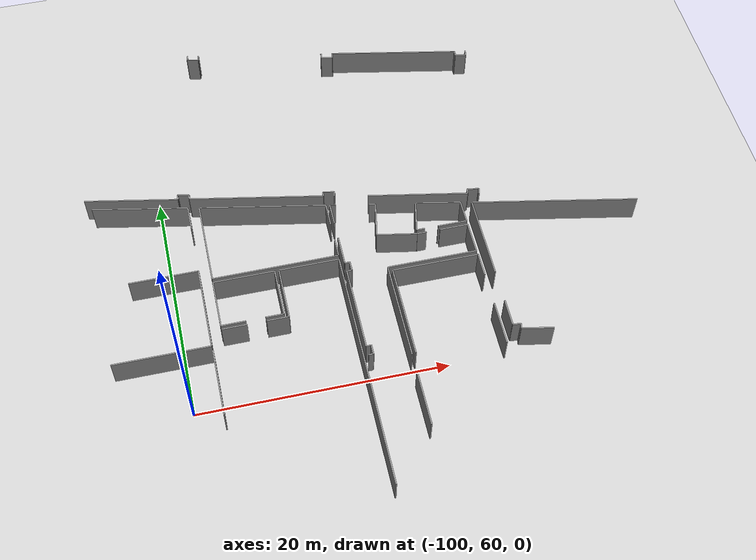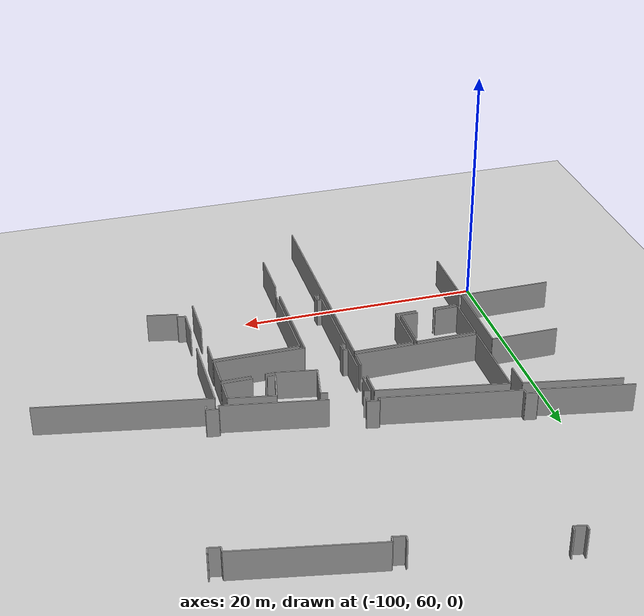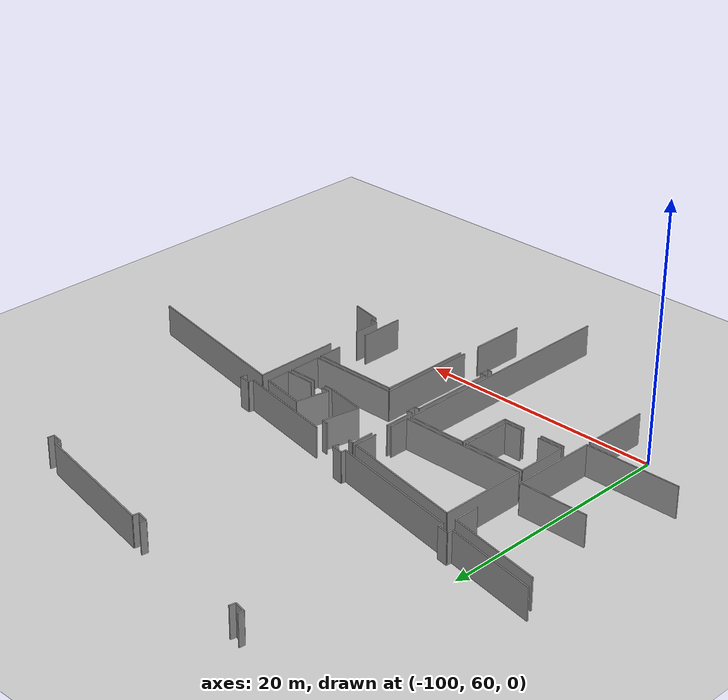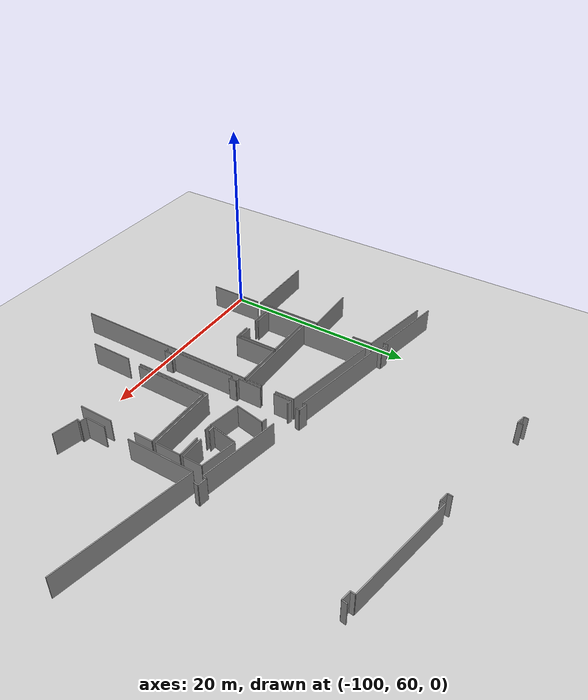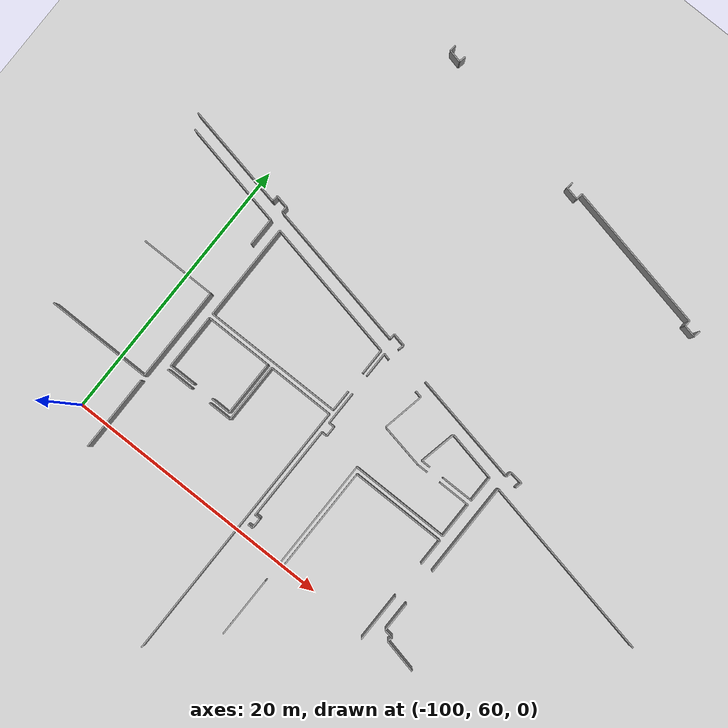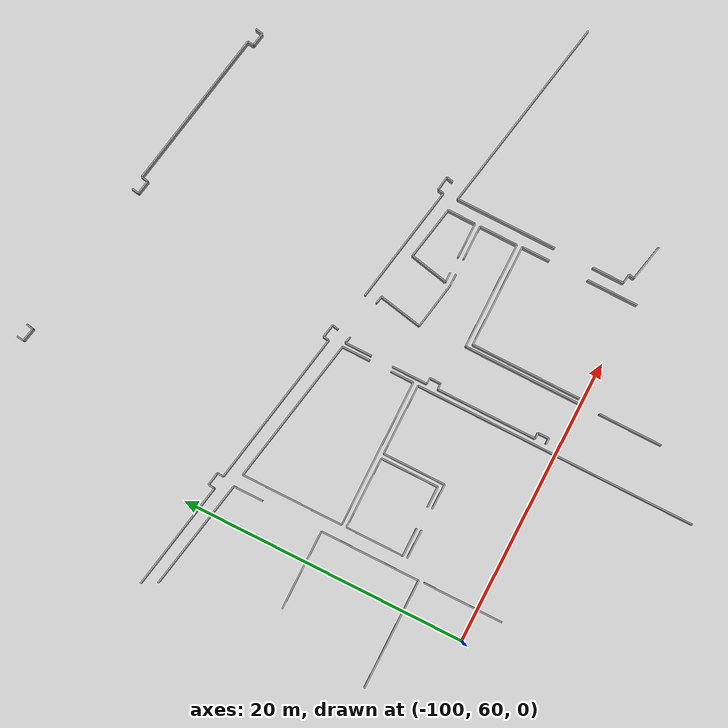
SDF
<sdf version="1.6">
 <world name="default">
  <model name="ground_plane">
   <static>1</static>
   <link name="link">
    <collision name="collision">
     <geometry><plane><normal>0 0 1</normal><size>100 100</size></plane></geometry>
     <surface><friction><ode><mu>100</mu><mu2>50</mu2></ode></friction></surface>
    </collision>
    <visual name="visual">
     <cast_shadows>0</cast_shadows>
     <geometry><plane><normal>0 0 1</normal><size>100 100</size></plane></geometry>
     <material>
      <script><uri>file://media/materials/scripts/gazebo.material</uri><name>Gazebo/Grey</name></script>
     </material>
    </visual>
   </link>
  </model>
  <model name="0510045926_A-40">
   <static>1</static>
   <link name="Wall_365">
    <collision name="Wall_365_Collision">
     <geometry><box><size>0.461885940468 0.1 2.5</size></box></geometry>
     <pose>0.230942970234 0 1.25 0 0 0</pose>
    </collision>
    <visual name="Wall_365_Visual">
     <pose>0.230942970234 0 1.25 0 0 0</pose>
     <geometry><box><size>0.461885940468 0.1 2.5</size></box></geometry>
     <material>
      <script><uri>file://media/materials/scripts/gazebo.material</uri><name>Gazebo/Grey</name></script>
      <ambient>1 1 1 1</ambient>
     </material>
    </visual>
    <pose>38.5242316747 -6.83302132844 0 0 0 -1.67374598682</pose>
   </link>
   <link name="Wall_366">
    <collision name="Wall_366_Collision">
     <geometry><box><size>0.952919581599 0.1 2.5</size></box></geometry>
     <pose>0.476459790799 0 1.25 0 0 0</pose>
    </collision>
    <visual name="Wall_366_Visual">
     <pose>0.476459790799 0 1.25 0 0 0</pose>
     <geometry><box><size>0.952919581599 0.1 2.5</size></box></geometry>
     <material>
      <script><uri>file://media/materials/scripts/gazebo.material</uri><name>Gazebo/Grey</name></script>
      <ambient>1 1 1 1</ambient>
     </material>
    </visual>
    <pose>38.4767646256 -7.29246175032 0 0 0 -0.220749206373</pose>
   </link>
   <link name="Wall_367">
    <collision name="Wall_367_Collision">
     <geometry><box><size>0.493934780057 0.1 2.5</size></box></geometry>
     <pose>0.246967390029 0 1.25 0 0 0</pose>
    </collision>
    <visual name="Wall_367_Visual">
     <pose>0.246967390029 0 1.25 0 0 0</pose>
     <geometry><box><size>0.493934780057 0.1 2.5</size></box></geometry>
     <material>
      <script><uri>file://media/materials/scripts/gazebo.material</uri><name>Gazebo/Grey</name></script>
      <ambient>1 1 1 1</ambient>
     </material>
    </visual>
    <pose>39.4065603523 -7.50111369881 0 0 0 1.36795836956</pose>
   </link>
   <link name="Wall_368">
    <collision name="Wall_368_Collision">
     <geometry><box><size>0.496517711066 0.1 2.5</size></box></geometry>
     <pose>0.248258855533 0 1.25 0 0 0</pose>
    </collision>
    <visual name="Wall_368_Visual">
     <pose>0.248258855533 0 1.25 0 0 0</pose>
     <geometry><box><size>0.496517711066 0.1 2.5</size></box></geometry>
     <material>
      <script><uri>file://media/materials/scripts/gazebo.material</uri><name>Gazebo/Grey</name></script>
      <ambient>1 1 1 1</ambient>
     </material>
    </visual>
    <pose>50.3158589442 -9.1066168305 0 0 0 -1.72115243782</pose>
   </link>
   <link name="Wall_369">
    <collision name="Wall_369_Collision">
     <geometry><box><size>0.964470180362 0.1 2.5</size></box></geometry>
     <pose>0.482235090181 0 1.25 0 0 0</pose>
    </collision>
    <visual name="Wall_369_Visual">
     <pose>0.482235090181 0 1.25 0 0 0</pose>
     <geometry><box><size>0.964470180362 0.1 2.5</size></box></geometry>
     <material>
      <script><uri>file://media/materials/scripts/gazebo.material</uri><name>Gazebo/Grey</name></script>
      <ambient>1 1 1 1</ambient>
     </material>
    </visual>
    <pose>50.2414854394 -9.59753272878 0 0 0 -0.2024538423</pose>
   </link>
   <link name="Wall_370">
    <collision name="Wall_370_Collision">
     <geometry><box><size>0.48304142692 0.1 2.5</size></box></geometry>
     <pose>0.24152071346 0 1.25 0 0 0</pose>
    </collision>
    <visual name="Wall_370_Visual">
     <pose>0.24152071346 0 1.25 0 0 0</pose>
     <geometry><box><size>0.48304142692 0.1 2.5</size></box></geometry>
     <material>
      <script><uri>file://media/materials/scripts/gazebo.material</uri><name>Gazebo/Grey</name></script>
      <ambient>1 1 1 1</ambient>
     </material>
    </visual>
    <pose>51.1862574009 -9.79146227702 0 0 0 1.38154239886</pose>
   </link>
   <link name="Wall_371">
    <collision name="Wall_371_Collision">
     <geometry><box><size>11.0305666657 0.1 2.5</size></box></geometry>
     <pose>5.51528333285 0 1.25 0 0 0</pose>
    </collision>
    <visual name="Wall_371_Visual">
     <pose>5.51528333285 0 1.25 0 0 0</pose>
     <geometry><box><size>11.0305666657 0.1 2.5</size></box></geometry>
     <material>
      <script><uri>file://media/materials/scripts/gazebo.material</uri><name>Gazebo/Grey</name></script>
      <ambient>1 1 1 1</ambient>
     </material>
    </visual>
    <pose>51.2771301473 -9.3170456204 0 0 0 -0.194899863685</pose>
   </link>
   <link name="Wall_372">
    <collision name="Wall_372_Collision">
     <geometry><box><size>0.42761581827 0.1 2.5</size></box></geometry>
     <pose>0.213807909135 0 1.25 0 0 0</pose>
    </collision>
    <visual name="Wall_372_Visual">
     <pose>0.213807909135 0 1.25 0 0 0</pose>
     <geometry><box><size>0.42761581827 0.1 2.5</size></box></geometry>
     <material>
      <script><uri>file://media/materials/scripts/gazebo.material</uri><name>Gazebo/Grey</name></script>
      <ambient>1 1 1 1</ambient>
     </material>
    </visual>
    <pose>62.098855841 -11.4533166649 0 0 0 -1.62662410434</pose>
   </link>
   <link name="Wall_373">
    <collision name="Wall_373_Collision">
     <geometry><box><size>0.91472697573 0.1 2.5</size></box></geometry>
     <pose>0.457363487865 0 1.25 0 0 0</pose>
    </collision>
    <visual name="Wall_373_Visual">
     <pose>0.457363487865 0 1.25 0 0 0</pose>
     <geometry><box><size>0.91472697573 0.1 2.5</size></box></geometry>
     <material>
      <script><uri>file://media/materials/scripts/gazebo.material</uri><name>Gazebo/Grey</name></script>
      <ambient>1 1 1 1</ambient>
     </material>
    </visual>
    <pose>62.0749953992 -11.8802662724 0 0 0 -0.198320729654</pose>
   </link>
   <link name="Wall_374">
    <collision name="Wall_374_Collision">
     <geometry><box><size>0.51002777244 0.1 2.5</size></box></geometry>
     <pose>0.25501388622 0 1.25 0 0 0</pose>
    </collision>
    <visual name="Wall_374_Visual">
     <pose>0.25501388622 0 1.25 0 0 0</pose>
     <geometry><box><size>0.51002777244 0.1 2.5</size></box></geometry>
     <material>
      <script><uri>file://media/materials/scripts/gazebo.material</uri><name>Gazebo/Grey</name></script>
      <ambient>1 1 1 1</ambient>
     </material>
    </visual>
    <pose>62.9717926426 -12.0604887583 0 0 0 1.40278396878</pose>
   </link>
   <link name="Wall_483">
    <collision name="Wall_483_Collision">
     <geometry><box><size>0.485042703617 0.1 2.5</size></box></geometry>
     <pose>0.242521351808 0 1.25 0 0 0</pose>
    </collision>
    <visual name="Wall_483_Visual">
     <pose>0.242521351808 0 1.25 0 0 0</pose>
     <geometry><box><size>0.485042703617 0.1 2.5</size></box></geometry>
     <material>
      <script><uri>file://media/materials/scripts/gazebo.material</uri><name>Gazebo/Grey</name></script>
      <ambient>1 1 1 1</ambient>
     </material>
    </visual>
    <pose>59.9993907972 -27.263651536 0 0 0 1.34650786807</pose>
   </link>
   <link name="Wall_484">
    <collision name="Wall_484_Collision">
     <geometry><box><size>0.963354885149 0.1 2.5</size></box></geometry>
     <pose>0.481677442574 0 1.25 0 0 0</pose>
    </collision>
    <visual name="Wall_484_Visual">
     <pose>0.481677442574 0 1.25 0 0 0</pose>
     <geometry><box><size>0.963354885149 0.1 2.5</size></box></geometry>
     <material>
      <script><uri>file://media/materials/scripts/gazebo.material</uri><name>Gazebo/Grey</name></script>
      <ambient>1 1 1 1</ambient>
     </material>
    </visual>
    <pose>60.1072704543 -26.7907578863 0 0 0 3.00334739375</pose>
   </link>
   <link name="Wall_485">
    <collision name="Wall_485_Collision">
     <geometry><box><size>0.413184305725 0.1 2.5</size></box></geometry>
     <pose>0.206592152863 0 1.25 0 0 0</pose>
    </collision>
    <visual name="Wall_485_Visual">
     <pose>0.206592152863 0 1.25 0 0 0</pose>
     <geometry><box><size>0.413184305725 0.1 2.5</size></box></geometry>
     <material>
      <script><uri>file://media/materials/scripts/gazebo.material</uri><name>Gazebo/Grey</name></script>
      <ambient>1 1 1 1</ambient>
     </material>
    </visual>
    <pose>59.1531066168 -26.6580024495 0 0 0 -1.75240816315</pose>
   </link>
   <link name="Wall_486">
    <collision name="Wall_486_Collision">
     <geometry><box><size>8.26304201056 0.1 2.5</size></box></geometry>
     <pose>4.13152100528 0 1.25 0 0 0</pose>
    </collision>
    <visual name="Wall_486_Visual">
     <pose>4.13152100528 0 1.25 0 0 0</pose>
     <geometry><box><size>8.26304201056 0.1 2.5</size></box></geometry>
     <material>
      <script><uri>file://media/materials/scripts/gazebo.material</uri><name>Gazebo/Grey</name></script>
      <ambient>1 1 1 1</ambient>
     </material>
    </visual>
    <pose>59.0784792776 -27.0643914635 0 0 0 2.955029431</pose>
   </link>
   <link name="Wall_487">
    <collision name="Wall_487_Collision">
     <geometry><box><size>0.443338118765 0.1 2.5</size></box></geometry>
     <pose>0.221669059383 0 1.25 0 0 0</pose>
    </collision>
    <visual name="Wall_487_Visual">
     <pose>0.221669059383 0 1.25 0 0 0</pose>
     <geometry><box><size>0.443338118765 0.1 2.5</size></box></geometry>
     <material>
      <script><uri>file://media/materials/scripts/gazebo.material</uri><name>Gazebo/Grey</name></script>
      <ambient>1 1 1 1</ambient>
     </material>
    </visual>
    <pose>48.2255319419 -24.9773643096 0 0 0 1.33442736621</pose>
   </link>
   <link name="Wall_488">
    <collision name="Wall_488_Collision">
     <geometry><box><size>0.963166256967 0.1 2.5</size></box></geometry>
     <pose>0.481583128483 0 1.25 0 0 0</pose>
    </collision>
    <visual name="Wall_488_Visual">
     <pose>0.481583128483 0 1.25 0 0 0</pose>
     <geometry><box><size>0.963166256967 0.1 2.5</size></box></geometry>
     <material>
      <script><uri>file://media/materials/scripts/gazebo.material</uri><name>Gazebo/Grey</name></script>
      <ambient>1 1 1 1</ambient>
     </material>
    </visual>
    <pose>48.3293502472 -24.5463533503 0 0 0 2.9418195915</pose>
   </link>
   <link name="Wall_489">
    <collision name="Wall_489_Collision">
     <geometry><box><size>0.40564156813 0.1 2.5</size></box></geometry>
     <pose>0.202820784065 0 1.25 0 0 0</pose>
    </collision>
    <visual name="Wall_489_Visual">
     <pose>0.202820784065 0 1.25 0 0 0</pose>
     <geometry><box><size>0.40564156813 0.1 2.5</size></box></geometry>
     <material>
      <script><uri>file://media/materials/scripts/gazebo.material</uri><name>Gazebo/Grey</name></script>
      <ambient>1 1 1 1</ambient>
     </material>
    </visual>
    <pose>47.3853397892 -24.3552159814 0 0 0 -1.66479878837</pose>
   </link>
   <link name="Wall_490">
    <collision name="Wall_490_Collision">
     <geometry><box><size>11.0612382931 0.1 2.5</size></box></geometry>
     <pose>5.53061914656 0 1.25 0 0 0</pose>
    </collision>
    <visual name="Wall_490_Visual">
     <pose>5.53061914656 0 1.25 0 0 0</pose>
     <geometry><box><size>11.0612382931 0.1 2.5</size></box></geometry>
     <material>
      <script><uri>file://media/materials/scripts/gazebo.material</uri><name>Gazebo/Grey</name></script>
      <ambient>1 1 1 1</ambient>
     </material>
    </visual>
    <pose>47.3472646161 -24.7590666506 0 0 0 2.95203253429</pose>
   </link>
   <link name="Wall_491">
    <collision name="Wall_491_Collision">
     <geometry><box><size>0.432721098888 0.1 2.5</size></box></geometry>
     <pose>0.216360549444 0 1.25 0 0 0</pose>
    </collision>
    <visual name="Wall_491_Visual">
     <pose>0.216360549444 0 1.25 0 0 0</pose>
     <geometry><box><size>0.432721098888 0.1 2.5</size></box></geometry>
     <material>
      <script><uri>file://media/materials/scripts/gazebo.material</uri><name>Gazebo/Grey</name></script>
      <ambient>1 1 1 1</ambient>
     </material>
    </visual>
    <pose>36.4841639009 -22.674831676 0 0 0 1.49622895798</pose>
   </link>
   <link name="Wall_492">
    <collision name="Wall_492_Collision">
     <geometry><box><size>0.937479080372 0.1 2.5</size></box></geometry>
     <pose>0.468739540186 0 1.25 0 0 0</pose>
    </collision>
    <visual name="Wall_492_Visual">
     <pose>0.468739540186 0 1.25 0 0 0</pose>
     <geometry><box><size>0.937479080372 0.1 2.5</size></box></geometry>
     <material>
      <script><uri>file://media/materials/scripts/gazebo.material</uri><name>Gazebo/Grey</name></script>
      <ambient>1 1 1 1</ambient>
     </material>
    </visual>
    <pose>36.5164008808 -22.2433130477 0 0 0 2.95476438133</pose>
   </link>
   <link name="Wall_493">
    <collision name="Wall_493_Collision">
     <geometry><box><size>0.448874120626 0.1 2.5</size></box></geometry>
     <pose>0.224437060313 0 1.25 0 0 0</pose>
    </collision>
    <visual name="Wall_493_Visual">
     <pose>0.224437060313 0 1.25 0 0 0</pose>
     <geometry><box><size>0.448874120626 0.1 2.5</size></box></geometry>
     <material>
      <script><uri>file://media/materials/scripts/gazebo.material</uri><name>Gazebo/Grey</name></script>
      <ambient>1 1 1 1</ambient>
     </material>
    </visual>
    <pose>35.5952355267 -22.0691825895 0 0 0 -1.65572209704</pose>
   </link>
   <link name="Wall_494">
    <collision name="Wall_494_Collision">
     <geometry><box><size>7.70296379077 0.1 2.5</size></box></geometry>
     <pose>3.85148189539 0 1.25 0 0 0</pose>
    </collision>
    <visual name="Wall_494_Visual">
     <pose>3.85148189539 0 1.25 0 0 0</pose>
     <geometry><box><size>7.70296379077 0.1 2.5</size></box></geometry>
     <material>
      <script><uri>file://media/materials/scripts/gazebo.material</uri><name>Gazebo/Grey</name></script>
      <ambient>1 1 1 1</ambient>
     </material>
    </visual>
    <pose>35.5571603536 -22.516438956 0 0 0 2.95032366023</pose>
   </link>
   <link name="Wall_564">
    <collision name="Wall_564_Collision">
     <geometry><box><size>2.19593535266 0.1 2.5</size></box></geometry>
     <pose>1.09796767633 0 1.25 0 0 0</pose>
    </collision>
    <visual name="Wall_564_Visual">
     <pose>1.09796767633 0 1.25 0 0 0</pose>
     <geometry><box><size>2.19593535266 0.1 2.5</size></box></geometry>
     <material>
      <script><uri>file://media/materials/scripts/gazebo.material</uri><name>Gazebo/Grey</name></script>
      <ambient>1 1 1 1</ambient>
     </material>
    </visual>
    <pose>59.1531066168 -39.9723828078 0 0 0 1.56732853351</pose>
   </link>
   <link name="Wall_565">
    <collision name="Wall_565_Collision">
     <geometry><box><size>7.0027858335 0.1 2.5</size></box></geometry>
     <pose>3.50139291675 0 1.25 0 0 0</pose>
    </collision>
    <visual name="Wall_565_Visual">
     <pose>3.50139291675 0 1.25 0 0 0</pose>
     <geometry><box><size>7.0027858335 0.1 2.5</size></box></geometry>
     <material>
      <script><uri>file://media/materials/scripts/gazebo.material</uri><name>Gazebo/Grey</name></script>
      <ambient>1 1 1 1</ambient>
     </material>
    </visual>
    <pose>59.1657983412 -35.0444400729 0 0 0 1.57079632679</pose>
   </link>
   <link name="Wall_566">
    <collision name="Wall_566_Collision">
     <geometry><box><size>13.6813769998 0.1 2.5</size></box></geometry>
     <pose>6.84068849989 0 1.25 0 0 0</pose>
    </collision>
    <visual name="Wall_566_Visual">
     <pose>6.84068849989 0 1.25 0 0 0</pose>
     <geometry><box><size>13.6813769998 0.1 2.5</size></box></geometry>
     <material>
      <script><uri>file://media/materials/scripts/gazebo.material</uri><name>Gazebo/Grey</name></script>
      <ambient>1 1 1 1</ambient>
     </material>
    </visual>
    <pose>59.1657983412 -28.0416542394 0 0 0 -0.191941273571</pose>
   </link>
   <link name="Wall_575">
    <collision name="Wall_575_Collision">
     <geometry><box><size>2.54412709612 0.1 2.5</size></box></geometry>
     <pose>1.27206354806 0 1.25 0 0 0</pose>
    </collision>
    <visual name="Wall_575_Visual">
     <pose>1.27206354806 0 1.25 0 0 0</pose>
     <geometry><box><size>2.54412709612 0.1 2.5</size></box></geometry>
     <material>
      <script><uri>file://media/materials/scripts/gazebo.material</uri><name>Gazebo/Grey</name></script>
      <ambient>1 1 1 1</ambient>
     </material>
    </visual>
    <pose>62.2067354981 -40.9633526459 0 0 0 2.93275012491</pose>
   </link>
   <link name="Wall_576">
    <collision name="Wall_576_Collision">
     <geometry><box><size>0.375192445591 0.1 2.5</size></box></geometry>
     <pose>0.187596222795 0 1.25 0 0 0</pose>
    </collision>
    <visual name="Wall_576_Visual">
     <pose>0.187596222795 0 1.25 0 0 0</pose>
     <geometry><box><size>0.375192445591 0.1 2.5</size></box></geometry>
     <material>
      <script><uri>file://media/materials/scripts/gazebo.material</uri><name>Gazebo/Grey</name></script>
      <ambient>1 1 1 1</ambient>
     </material>
    </visual>
    <pose>59.7178883509 -40.4358845815 0 0 0 1.31498776218</pose>
   </link>
   <link name="Wall_577">
    <collision name="Wall_577_Collision">
     <geometry><box><size>0.667329708287 0.1 2.5</size></box></geometry>
     <pose>0.333664854143 0 1.25 0 0 0</pose>
    </collision>
    <visual name="Wall_577_Visual">
     <pose>0.333664854143 0 1.25 0 0 0</pose>
     <geometry><box><size>0.667329708287 0.1 2.5</size></box></geometry>
     <material>
      <script><uri>file://media/materials/scripts/gazebo.material</uri><name>Gazebo/Grey</name></script>
      <ambient>1 1 1 1</ambient>
     </material>
    </visual>
    <pose>59.8128224491 -40.0729012647 0 0 0 2.9903892885</pose>
   </link>
   <link name="Wall_614">
    <collision name="Wall_614_Collision">
     <geometry><box><size>2.09083467125 0.1 2.5</size></box></geometry>
     <pose>1.04541733563 0 1.25 0 0 0</pose>
    </collision>
    <visual name="Wall_614_Visual">
     <pose>1.04541733563 0 1.25 0 0 0</pose>
     <geometry><box><size>2.09083467125 0.1 2.5</size></box></geometry>
     <material>
      <script><uri>file://media/materials/scripts/gazebo.material</uri><name>Gazebo/Grey</name></script>
      <ambient>1 1 1 1</ambient>
     </material>
    </visual>
    <pose>36.2361676069 -25.6530717146 0 0 0 1.57079632679</pose>
   </link>
   <link name="Wall_615">
    <collision name="Wall_615_Collision">
     <geometry><box><size>7.85780508552 0.1 2.5</size></box></geometry>
     <pose>3.92890254276 0 1.25 0 0 0</pose>
    </collision>
    <visual name="Wall_615_Visual">
     <pose>3.92890254276 0 1.25 0 0 0</pose>
     <geometry><box><size>7.85780508552 0.1 2.5</size></box></geometry>
     <material>
      <script><uri>file://media/materials/scripts/gazebo.material</uri><name>Gazebo/Grey</name></script>
      <ambient>1 1 1 1</ambient>
     </material>
    </visual>
    <pose>36.2361676069 -23.5622370433 0 0 0 2.94630672842</pose>
   </link>
   <link name="Wall_616">
    <collision name="Wall_616_Collision">
     <geometry><box><size>5.56532113236 0.1 2.5</size></box></geometry>
     <pose>2.78266056618 0 1.25 0 0 0</pose>
    </collision>
    <visual name="Wall_616_Visual">
     <pose>2.78266056618 0 1.25 0 0 0</pose>
     <geometry><box><size>5.56532113236 0.1 2.5</size></box></geometry>
     <material>
      <script><uri>file://media/materials/scripts/gazebo.material</uri><name>Gazebo/Grey</name></script>
      <ambient>1 1 1 1</ambient>
     </material>
    </visual>
    <pose>30.6279484462 -29.8796697613 0 0 0 0.0</pose>
   </link>
   <link name="Wall_617">
    <collision name="Wall_617_Collision">
     <geometry><box><size>6.99187095055 0.1 2.5</size></box></geometry>
     <pose>3.49593547527 0 1.25 0 0 0</pose>
    </collision>
    <visual name="Wall_617_Visual">
     <pose>3.49593547527 0 1.25 0 0 0</pose>
     <geometry><box><size>6.99187095055 0.1 2.5</size></box></geometry>
     <material>
      <script><uri>file://media/materials/scripts/gazebo.material</uri><name>Gazebo/Grey</name></script>
      <ambient>1 1 1 1</ambient>
     </material>
    </visual>
    <pose>36.1932695786 -29.8796697613 0 0 0 -1.57079632679</pose>
   </link>
   <link name="Wall_618">
    <collision name="Wall_618_Collision">
     <geometry><box><size>7.70920721144 0.1 2.5</size></box></geometry>
     <pose>3.85460360572 0 1.25 0 0 0</pose>
    </collision>
    <visual name="Wall_618_Visual">
     <pose>3.85460360572 0 1.25 0 0 0</pose>
     <geometry><box><size>7.70920721144 0.1 2.5</size></box></geometry>
     <material>
      <script><uri>file://media/materials/scripts/gazebo.material</uri><name>Gazebo/Grey</name></script>
      <ambient>1 1 1 1</ambient>
     </material>
    </visual>
    <pose>36.1932695786 -36.8715407119 0 0 0 3.14159265359</pose>
   </link>
   <link name="Wall_678">
    <collision name="Wall_678_Collision">
     <geometry><box><size>5.60111179505 0.1 2.5</size></box></geometry>
     <pose>2.80055589753 0 1.25 0 0 0</pose>
    </collision>
    <visual name="Wall_678_Visual">
     <pose>2.80055589753 0 1.25 0 0 0</pose>
     <geometry><box><size>5.60111179505 0.1 2.5</size></box></geometry>
     <material>
      <script><uri>file://media/materials/scripts/gazebo.material</uri><name>Gazebo/Grey</name></script>
      <ambient>1 1 1 1</ambient>
     </material>
    </visual>
    <pose>36.2260142274 -37.2342701941 0 0 0 -1.57079632679</pose>
   </link>
   <link name="Wall_691">
    <collision name="Wall_691_Collision">
     <geometry><box><size>2.02534537355 0.1 2.5</size></box></geometry>
     <pose>1.01267268677 0 1.25 0 0 0</pose>
    </collision>
    <visual name="Wall_691_Visual">
     <pose>1.01267268677 0 1.25 0 0 0</pose>
     <geometry><box><size>2.02534537355 0.1 2.5</size></box></geometry>
     <material>
      <script><uri>file://media/materials/scripts/gazebo.material</uri><name>Gazebo/Grey</name></script>
      <ambient>1 1 1 1</ambient>
     </material>
    </visual>
    <pose>37.1433720642 -35.5714004683 0 0 0 0.0</pose>
   </link>
   <link name="Wall_692">
    <collision name="Wall_692_Collision">
     <geometry><box><size>1.75754998953 0.1 2.5</size></box></geometry>
     <pose>0.878774994765 0 1.25 0 0 0</pose>
    </collision>
    <visual name="Wall_692_Visual">
     <pose>0.878774994765 0 1.25 0 0 0</pose>
     <geometry><box><size>1.75754998953 0.1 2.5</size></box></geometry>
     <material>
      <script><uri>file://media/materials/scripts/gazebo.material</uri><name>Gazebo/Grey</name></script>
      <ambient>1 1 1 1</ambient>
     </material>
    </visual>
    <pose>40.6871553404 -35.5714004683 0 0 0 0.0</pose>
   </link>
   <link name="Wall_693">
    <collision name="Wall_693_Collision">
     <geometry><box><size>4.38575227023 0.1 2.5</size></box></geometry>
     <pose>2.19287613512 0 1.25 0 0 0</pose>
    </collision>
    <visual name="Wall_693_Visual">
     <pose>2.19287613512 0 1.25 0 0 0</pose>
     <geometry><box><size>4.38575227023 0.1 2.5</size></box></geometry>
     <material>
      <script><uri>file://media/materials/scripts/gazebo.material</uri><name>Gazebo/Grey</name></script>
      <ambient>1 1 1 1</ambient>
     </material>
    </visual>
    <pose>42.4447053299 -35.5714004683 0 0 0 1.57079632679</pose>
   </link>
   <link name="Wall_694">
    <collision name="Wall_694_Collision">
     <geometry><box><size>4.88123718929 0.1 2.5</size></box></geometry>
     <pose>2.44061859465 0 1.25 0 0 0</pose>
    </collision>
    <visual name="Wall_694_Visual">
     <pose>2.44061859465 0 1.25 0 0 0</pose>
     <geometry><box><size>4.88123718929 0.1 2.5</size></box></geometry>
     <material>
      <script><uri>file://media/materials/scripts/gazebo.material</uri><name>Gazebo/Grey</name></script>
      <ambient>1 1 1 1</ambient>
     </material>
    </visual>
    <pose>42.4447053299 -31.1856481981 0 0 0 0.0</pose>
   </link>
   <link name="Wall_695">
    <collision name="Wall_695_Collision">
     <geometry><box><size>19.707709588 0.1 2.5</size></box></geometry>
     <pose>9.85385479398 0 1.25 0 0 0</pose>
    </collision>
    <visual name="Wall_695_Visual">
     <pose>9.85385479398 0 1.25 0 0 0</pose>
     <geometry><box><size>19.707709588 0.1 2.5</size></box></geometry>
     <material>
      <script><uri>file://media/materials/scripts/gazebo.material</uri><name>Gazebo/Grey</name></script>
      <ambient>1 1 1 1</ambient>
     </material>
    </visual>
    <pose>47.3259425192 -31.1856481981 0 0 0 -1.57079632679</pose>
   </link>
   <link name="Wall_698">
    <collision name="Wall_698_Collision">
     <geometry><box><size>4.06490547838 0.1 2.5</size></box></geometry>
     <pose>2.03245273919 0 1.25 0 0 0</pose>
    </collision>
    <visual name="Wall_698_Visual">
     <pose>2.03245273919 0 1.25 0 0 0</pose>
     <geometry><box><size>4.06490547838 0.1 2.5</size></box></geometry>
     <material>
      <script><uri>file://media/materials/scripts/gazebo.material</uri><name>Gazebo/Grey</name></script>
      <ambient>1 1 1 1</ambient>
     </material>
    </visual>
    <pose>37.1487025885 -35.2576610421 0 0 0 1.57079632679</pose>
   </link>
   <link name="Wall_699">
    <collision name="Wall_699_Collision">
     <geometry><box><size>4.96170272174 0.1 2.5</size></box></geometry>
     <pose>2.48085136087 0 1.25 0 0 0</pose>
    </collision>
    <visual name="Wall_699_Visual">
     <pose>2.48085136087 0 1.25 0 0 0</pose>
     <geometry><box><size>4.96170272174 0.1 2.5</size></box></geometry>
     <material>
      <script><uri>file://media/materials/scripts/gazebo.material</uri><name>Gazebo/Grey</name></script>
      <ambient>1 1 1 1</ambient>
     </material>
    </visual>
    <pose>37.1487025885 -31.1927555637 0 0 0 0.0</pose>
   </link>
   <link name="Wall_700">
    <collision name="Wall_700_Collision">
     <geometry><box><size>4.05729044377 0.1 2.5</size></box></geometry>
     <pose>2.02864522188 0 1.25 0 0 0</pose>
    </collision>
    <visual name="Wall_700_Visual">
     <pose>2.02864522188 0 1.25 0 0 0</pose>
     <geometry><box><size>4.05729044377 0.1 2.5</size></box></geometry>
     <material>
      <script><uri>file://media/materials/scripts/gazebo.material</uri><name>Gazebo/Grey</name></script>
      <ambient>1 1 1 1</ambient>
     </material>
    </visual>
    <pose>42.1104053102 -31.1927555637 0 0 0 -1.57079632679</pose>
   </link>
   <link name="Wall_701">
    <collision name="Wall_701_Collision">
     <geometry><box><size>1.45650228768 0.1 2.5</size></box></geometry>
     <pose>0.728251143842 0 1.25 0 0 0</pose>
    </collision>
    <visual name="Wall_701_Visual">
     <pose>0.728251143842 0 1.25 0 0 0</pose>
     <geometry><box><size>1.45650228768 0.1 2.5</size></box></geometry>
     <material>
      <script><uri>file://media/materials/scripts/gazebo.material</uri><name>Gazebo/Grey</name></script>
      <ambient>1 1 1 1</ambient>
     </material>
    </visual>
    <pose>42.1104053102 -35.2500460075 0 0 0 3.14159265359</pose>
   </link>
   <link name="Wall_702">
    <collision name="Wall_702_Collision">
     <geometry><box><size>1.9725624991 0.1 2.5</size></box></geometry>
     <pose>0.98628124955 0 1.25 0 0 0</pose>
    </collision>
    <visual name="Wall_702_Visual">
     <pose>0.98628124955 0 1.25 0 0 0</pose>
     <geometry><box><size>1.9725624991 0.1 2.5</size></box></geometry>
     <material>
      <script><uri>file://media/materials/scripts/gazebo.material</uri><name>Gazebo/Grey</name></script>
      <ambient>1 1 1 1</ambient>
     </material>
    </visual>
    <pose>39.1212503887 -35.2500460075 0 0 0 -3.13773216575</pose>
   </link>
   <link name="Wall_829">
    <collision name="Wall_829_Collision">
     <geometry><box><size>7.02334642696 0.1 2.5</size></box></geometry>
     <pose>3.51167321348 0 1.25 0 0 0</pose>
    </collision>
    <visual name="Wall_829_Visual">
     <pose>3.51167321348 0 1.25 0 0 0</pose>
     <geometry><box><size>7.02334642696 0.1 2.5</size></box></geometry>
     <material>
      <script><uri>file://media/materials/scripts/gazebo.material</uri><name>Gazebo/Grey</name></script>
      <ambient>1 1 1 1</ambient>
     </material>
    </visual>
    <pose>51.2641845884 -33.1373815703 0 0 0 0.0</pose>
   </link>
   <link name="Wall_830">
    <collision name="Wall_830_Collision">
     <geometry><box><size>1.96772494495 0.1 2.5</size></box></geometry>
     <pose>0.983862472475 0 1.25 0 0 0</pose>
    </collision>
    <visual name="Wall_830_Visual">
     <pose>0.983862472475 0 1.25 0 0 0</pose>
     <geometry><box><size>1.96772494495 0.1 2.5</size></box></geometry>
     <material>
      <script><uri>file://media/materials/scripts/gazebo.material</uri><name>Gazebo/Grey</name></script>
      <ambient>1 1 1 1</ambient>
     </material>
    </visual>
    <pose>58.2875310154 -33.1373815703 0 0 0 -1.57079632679</pose>
   </link>
   <link name="Wall_831">
    <collision name="Wall_831_Collision">
     <geometry><box><size>3.57551258702 0.1 2.5</size></box></geometry>
     <pose>1.78775629351 0 1.25 0 0 0</pose>
    </collision>
    <visual name="Wall_831_Visual">
     <pose>1.78775629351 0 1.25 0 0 0</pose>
     <geometry><box><size>3.57551258702 0.1 2.5</size></box></geometry>
     <material>
      <script><uri>file://media/materials/scripts/gazebo.material</uri><name>Gazebo/Grey</name></script>
      <ambient>1 1 1 1</ambient>
     </material>
    </visual>
    <pose>58.2875310154 -37.8350964254 0 0 0 -1.57079632679</pose>
   </link>
   <link name="Wall_835">
    <collision name="Wall_835_Collision">
     <geometry><box><size>7.66834012787 0.1 2.5</size></box></geometry>
     <pose>3.83417006393 0 1.25 0 0 0</pose>
    </collision>
    <visual name="Wall_835_Visual">
     <pose>3.83417006393 0 1.25 0 0 0</pose>
     <geometry><box><size>7.66834012787 0.1 2.5</size></box></geometry>
     <material>
      <script><uri>file://media/materials/scripts/gazebo.material</uri><name>Gazebo/Grey</name></script>
      <ambient>1 1 1 1</ambient>
     </material>
    </visual>
    <pose>51.2662152643 -40.8057214293 0 0 0 1.57106113976</pose>
   </link>
   <link name="Wall_836">
    <collision name="Wall_836_Collision">
     <geometry><box><size>7.10254278698 0.1 2.5</size></box></geometry>
     <pose>3.55127139349 0 1.25 0 0 0</pose>
    </collision>
    <visual name="Wall_836_Visual">
     <pose>3.55127139349 0 1.25 0 0 0</pose>
     <geometry><box><size>7.10254278698 0.1 2.5</size></box></geometry>
     <material>
      <script><uri>file://media/materials/scripts/gazebo.material</uri><name>Gazebo/Grey</name></script>
      <ambient>1 1 1 1</ambient>
     </material>
    </visual>
    <pose>37.1487025885 -30.8467791577 0 0 0 1.57079632679</pose>
   </link>
   <link name="Wall_837">
    <collision name="Wall_837_Collision">
     <geometry><box><size>10.4140556282 0.1 2.5</size></box></geometry>
     <pose>5.20702781411 0 1.25 0 0 0</pose>
    </collision>
    <visual name="Wall_837_Visual">
     <pose>5.20702781411 0 1.25 0 0 0</pose>
     <geometry><box><size>10.4140556282 0.1 2.5</size></box></geometry>
     <material>
      <script><uri>file://media/materials/scripts/gazebo.material</uri><name>Gazebo/Grey</name></script>
      <ambient>1 1 1 1</ambient>
     </material>
    </visual>
    <pose>37.1487025885 -23.7442363707 0 0 0 -0.192773111356</pose>
   </link>
   <link name="Wall_838">
    <collision name="Wall_838_Collision">
     <geometry><box><size>1.96112524828 0.1 2.5</size></box></geometry>
     <pose>0.980562624141 0 1.25 0 0 0</pose>
    </collision>
    <visual name="Wall_838_Visual">
     <pose>0.980562624141 0 1.25 0 0 0</pose>
     <geometry><box><size>1.96112524828 0.1 2.5</size></box></geometry>
     <material>
      <script><uri>file://media/materials/scripts/gazebo.material</uri><name>Gazebo/Grey</name></script>
      <ambient>1 1 1 1</ambient>
     </material>
    </visual>
    <pose>47.3698558855 -25.7393754402 0 0 0 -1.57079632679</pose>
   </link>
   <link name="Wall_839">
    <collision name="Wall_839_Collision">
     <geometry><box><size>1.60017260745 0.1 2.5</size></box></geometry>
     <pose>0.800086303726 0 1.25 0 0 0</pose>
    </collision>
    <visual name="Wall_839_Visual">
     <pose>0.800086303726 0 1.25 0 0 0</pose>
     <geometry><box><size>1.60017260745 0.1 2.5</size></box></geometry>
     <material>
      <script><uri>file://media/materials/scripts/gazebo.material</uri><name>Gazebo/Grey</name></script>
      <ambient>1 1 1 1</ambient>
     </material>
    </visual>
    <pose>47.3698558855 -29.2219846049 0 0 0 -1.57079632679</pose>
   </link>
   <link name="Wall_840">
    <collision name="Wall_840_Collision">
     <geometry><box><size>10.2211829531 0.1 2.5</size></box></geometry>
     <pose>5.11059147655 0 1.25 0 0 0</pose>
    </collision>
    <visual name="Wall_840_Visual">
     <pose>5.11059147655 0 1.25 0 0 0</pose>
     <geometry><box><size>10.2211829531 0.1 2.5</size></box></geometry>
     <material>
      <script><uri>file://media/materials/scripts/gazebo.material</uri><name>Gazebo/Grey</name></script>
      <ambient>1 1 1 1</ambient>
     </material>
    </visual>
    <pose>47.3698558855 -30.8221572124 0 0 0 -3.13918373779</pose>
   </link>
   <link name="Wall_841">
    <collision name="Wall_841_Collision">
     <geometry><box><size>3.71023277894 0.1 2.5</size></box></geometry>
     <pose>1.85511638947 0 1.25 0 0 0</pose>
    </collision>
    <visual name="Wall_841_Visual">
     <pose>1.85511638947 0 1.25 0 0 0</pose>
     <geometry><box><size>3.71023277894 0.1 2.5</size></box></geometry>
     <material>
      <script><uri>file://media/materials/scripts/gazebo.material</uri><name>Gazebo/Grey</name></script>
      <ambient>1 1 1 1</ambient>
     </material>
    </visual>
    <pose>54.6147998198 -27.1017051332 0 0 0 -0.196308764179</pose>
   </link>
   <link name="Wall_842">
    <collision name="Wall_842_Collision">
     <geometry><box><size>1.93168044776 0.1 2.5</size></box></geometry>
     <pose>0.965840223882 0 1.25 0 0 0</pose>
    </collision>
    <visual name="Wall_842_Visual">
     <pose>0.965840223882 0 1.25 0 0 0</pose>
     <geometry><box><size>1.93168044776 0.1 2.5</size></box></geometry>
     <material>
      <script><uri>file://media/materials/scripts/gazebo.material</uri><name>Gazebo/Grey</name></script>
      <ambient>1 1 1 1</ambient>
     </material>
    </visual>
    <pose>58.2537710286 -27.8253872562 0 0 0 -1.57079632679</pose>
   </link>
   <link name="Wall_843">
    <collision name="Wall_843_Collision">
     <geometry><box><size>2.40102041464 0.1 2.5</size></box></geometry>
     <pose>1.20051020732 0 1.25 0 0 0</pose>
    </collision>
    <visual name="Wall_843_Visual">
     <pose>1.20051020732 0 1.25 0 0 0</pose>
     <geometry><box><size>2.40102041464 0.1 2.5</size></box></geometry>
     <material>
      <script><uri>file://media/materials/scripts/gazebo.material</uri><name>Gazebo/Grey</name></script>
      <ambient>1 1 1 1</ambient>
     </material>
    </visual>
    <pose>58.2537710286 -29.757067704 0 0 0 3.14159265359</pose>
   </link>
   <link name="Wall_844">
    <collision name="Wall_844_Collision">
     <geometry><box><size>0.655146811522 0.1 2.5</size></box></geometry>
     <pose>0.327573405761 0 1.25 0 0 0</pose>
    </collision>
    <visual name="Wall_844_Visual">
     <pose>0.327573405761 0 1.25 0 0 0</pose>
     <geometry><box><size>0.655146811522 0.1 2.5</size></box></geometry>
     <material>
      <script><uri>file://media/materials/scripts/gazebo.material</uri><name>Gazebo/Grey</name></script>
      <ambient>1 1 1 1</ambient>
     </material>
    </visual>
    <pose>54.7302945115 -29.757067704 0 0 0 3.14159265359</pose>
   </link>
   <link name="Wall_845">
    <collision name="Wall_845_Collision">
     <geometry><box><size>2.70964477248 0.1 2.5</size></box></geometry>
     <pose>1.35482238624 0 1.25 0 0 0</pose>
    </collision>
    <visual name="Wall_845_Visual">
     <pose>1.35482238624 0 1.25 0 0 0</pose>
     <geometry><box><size>2.70964477248 0.1 2.5</size></box></geometry>
     <material>
      <script><uri>file://media/materials/scripts/gazebo.material</uri><name>Gazebo/Grey</name></script>
      <ambient>1 1 1 1</ambient>
     </material>
    </visual>
    <pose>54.0751476999 -29.757067704 0 0 0 1.37029592858</pose>
   </link>
   <link name="Wall_846">
    <collision name="Wall_846_Collision">
     <geometry><box><size>7.00050132311 0.1 2.5</size></box></geometry>
     <pose>3.50025066156 0 1.25 0 0 0</pose>
    </collision>
    <visual name="Wall_846_Visual">
     <pose>3.50025066156 0 1.25 0 0 0</pose>
     <geometry><box><size>7.00050132311 0.1 2.5</size></box></geometry>
     <material>
      <script><uri>file://media/materials/scripts/gazebo.material</uri><name>Gazebo/Grey</name></script>
      <ambient>1 1 1 1</ambient>
     </material>
    </visual>
    <pose>47.6937486912 -39.4284155017 0 0 0 1.57079632679</pose>
   </link>
   <link name="Wall_847">
    <collision name="Wall_847_Collision">
     <geometry><box><size>0.410196531352 0.1 2.5</size></box></geometry>
     <pose>0.205098265676 0 1.25 0 0 0</pose>
    </collision>
    <visual name="Wall_847_Visual">
     <pose>0.205098265676 0 1.25 0 0 0</pose>
     <geometry><box><size>0.410196531352 0.1 2.5</size></box></geometry>
     <material>
      <script><uri>file://media/materials/scripts/gazebo.material</uri><name>Gazebo/Grey</name></script>
      <ambient>1 1 1 1</ambient>
     </material>
    </visual>
    <pose>47.6937486912 -32.4279141786 0 0 0 0.0</pose>
   </link>
   <link name="Wall_848">
    <collision name="Wall_848_Collision">
     <geometry><box><size>0.784348565518 0.1 2.5</size></box></geometry>
     <pose>0.392174282759 0 1.25 0 0 0</pose>
    </collision>
    <visual name="Wall_848_Visual">
     <pose>0.392174282759 0 1.25 0 0 0</pose>
     <geometry><box><size>0.784348565518 0.1 2.5</size></box></geometry>
     <material>
      <script><uri>file://media/materials/scripts/gazebo.material</uri><name>Gazebo/Grey</name></script>
      <ambient>1 1 1 1</ambient>
     </material>
    </visual>
    <pose>48.1039452225 -32.4279141786 0 0 0 1.57079632679</pose>
   </link>
   <link name="Wall_849">
    <collision name="Wall_849_Collision">
     <geometry><box><size>0.420349910841 0.1 2.5</size></box></geometry>
     <pose>0.21017495542 0 1.25 0 0 0</pose>
    </collision>
    <visual name="Wall_849_Visual">
     <pose>0.21017495542 0 1.25 0 0 0</pose>
     <geometry><box><size>0.420349910841 0.1 2.5</size></box></geometry>
     <material>
      <script><uri>file://media/materials/scripts/gazebo.material</uri><name>Gazebo/Grey</name></script>
      <ambient>1 1 1 1</ambient>
     </material>
    </visual>
    <pose>48.1039452225 -31.643565613 0 0 0 3.14159265359</pose>
   </link>
   <link name="Wall_850">
    <collision name="Wall_850_Collision">
     <geometry><box><size>2.48554729888 0.1 2.5</size></box></geometry>
     <pose>1.24277364944 0 1.25 0 0 0</pose>
    </collision>
    <visual name="Wall_850_Visual">
     <pose>1.24277364944 0 1.25 0 0 0</pose>
     <geometry><box><size>2.48554729888 0.1 2.5</size></box></geometry>
     <material>
      <script><uri>file://media/materials/scripts/gazebo.material</uri><name>Gazebo/Grey</name></script>
      <ambient>1 1 1 1</ambient>
     </material>
    </visual>
    <pose>47.6835953117 -31.643565613 0 0 0 1.57079632679</pose>
   </link>
   <link name="Wall_851">
    <collision name="Wall_851_Collision">
     <geometry><box><size>1.88167505378 0.1 2.5</size></box></geometry>
     <pose>0.940837526891 0 1.25 0 0 0</pose>
    </collision>
    <visual name="Wall_851_Visual">
     <pose>0.940837526891 0 1.25 0 0 0</pose>
     <geometry><box><size>1.88167505378 0.1 2.5</size></box></geometry>
     <material>
      <script><uri>file://media/materials/scripts/gazebo.material</uri><name>Gazebo/Grey</name></script>
      <ambient>1 1 1 1</ambient>
     </material>
    </visual>
    <pose>47.6835953117 -27.6598871706 0 0 0 1.57079632679</pose>
   </link>
   <link name="Wall_852">
    <collision name="Wall_852_Collision">
     <geometry><box><size>0.48081424786 0.1 2.5</size></box></geometry>
     <pose>0.24040712393 0 1.25 0 0 0</pose>
    </collision>
    <visual name="Wall_852_Visual">
     <pose>0.24040712393 0 1.25 0 0 0</pose>
     <geometry><box><size>0.48081424786 0.1 2.5</size></box></geometry>
     <material>
      <script><uri>file://media/materials/scripts/gazebo.material</uri><name>Gazebo/Grey</name></script>
      <ambient>1 1 1 1</ambient>
     </material>
    </visual>
    <pose>47.6835953117 -25.7782121168 0 0 0 -0.244210417439</pose>
   </link>
   <link name="Wall_853">
    <collision name="Wall_853_Collision">
     <geometry><box><size>0.533911444239 0.1 2.5</size></box></geometry>
     <pose>0.26695572212 0 1.25 0 0 0</pose>
    </collision>
    <visual name="Wall_853_Visual">
     <pose>0.26695572212 0 1.25 0 0 0</pose>
     <geometry><box><size>0.533911444239 0.1 2.5</size></box></geometry>
     <material>
      <script><uri>file://media/materials/scripts/gazebo.material</uri><name>Gazebo/Grey</name></script>
      <ambient>1 1 1 1</ambient>
     </material>
    </visual>
    <pose>50.8468806914 -26.4089908175 0 0 0 -0.203456091708</pose>
   </link>
   <link name="Wall_854">
    <collision name="Wall_854_Collision">
     <geometry><box><size>3.06752941172 0.1 2.5</size></box></geometry>
     <pose>1.53376470586 0 1.25 0 0 0</pose>
    </collision>
    <visual name="Wall_854_Visual">
     <pose>1.53376470586 0 1.25 0 0 0</pose>
     <geometry><box><size>3.06752941172 0.1 2.5</size></box></geometry>
     <material>
      <script><uri>file://media/materials/scripts/gazebo.material</uri><name>Gazebo/Grey</name></script>
      <ambient>1 1 1 1</ambient>
     </material>
    </visual>
    <pose>51.3697797351 -26.5168704746 0 0 0 -1.76135968474</pose>
   </link>
   <link name="Wall_855">
    <collision name="Wall_855_Collision">
     <geometry><box><size>3.29083776516 0.1 2.5</size></box></geometry>
     <pose>1.64541888258 0 1.25 0 0 0</pose>
    </collision>
    <visual name="Wall_855_Visual">
     <pose>1.64541888258 0 1.25 0 0 0</pose>
     <geometry><box><size>3.29083776516 0.1 2.5</size></box></geometry>
     <material>
      <script><uri>file://media/materials/scripts/gazebo.material</uri><name>Gazebo/Grey</name></script>
      <ambient>1 1 1 1</ambient>
     </material>
    </visual>
    <pose>50.7887525939 -29.5288705 0 0 0 -0.182585526083</pose>
   </link>
   <link name="Wall_856">
    <collision name="Wall_856_Collision">
     <geometry><box><size>0.771910675644 0.1 2.5</size></box></geometry>
     <pose>0.385955337822 0 1.25 0 0 0</pose>
    </collision>
    <visual name="Wall_856_Visual">
     <pose>0.385955337822 0 1.25 0 0 0</pose>
     <geometry><box><size>0.771910675644 0.1 2.5</size></box></geometry>
     <material>
      <script><uri>file://media/materials/scripts/gazebo.material</uri><name>Gazebo/Grey</name></script>
      <ambient>1 1 1 1</ambient>
     </material>
    </visual>
    <pose>54.0248884715 -30.1263968829 0 0 0 0.0</pose>
   </link>
   <link name="Wall_857">
    <collision name="Wall_857_Collision">
     <geometry><box><size>2.34365382053 0.1 2.5</size></box></geometry>
     <pose>1.17182691026 0 1.25 0 0 0</pose>
    </collision>
    <visual name="Wall_857_Visual">
     <pose>1.17182691026 0 1.25 0 0 0</pose>
     <geometry><box><size>2.34365382053 0.1 2.5</size></box></geometry>
     <material>
      <script><uri>file://media/materials/scripts/gazebo.material</uri><name>Gazebo/Grey</name></script>
      <ambient>1 1 1 1</ambient>
     </material>
    </visual>
    <pose>55.9060558563 -30.1263968829 0 0 0 0.0</pose>
   </link>
   <link name="Wall_858">
    <collision name="Wall_858_Collision">
     <geometry><box><size>2.64673219827 0.1 2.5</size></box></geometry>
     <pose>1.32336609914 0 1.25 0 0 0</pose>
    </collision>
    <visual name="Wall_858_Visual">
     <pose>1.32336609914 0 1.25 0 0 0</pose>
     <geometry><box><size>2.64673219827 0.1 2.5</size></box></geometry>
     <material>
      <script><uri>file://media/materials/scripts/gazebo.material</uri><name>Gazebo/Grey</name></script>
      <ambient>1 1 1 1</ambient>
     </material>
    </visual>
    <pose>58.2497096768 -30.1263968829 0 0 0 -1.57079632679</pose>
   </link>
   <link name="Wall_859">
    <collision name="Wall_859_Collision">
     <geometry><box><size>7.29088797649 0.1 2.5</size></box></geometry>
     <pose>3.64544398825 0 1.25 0 0 0</pose>
    </collision>
    <visual name="Wall_859_Visual">
     <pose>3.64544398825 0 1.25 0 0 0</pose>
     <geometry><box><size>7.29088797649 0.1 2.5</size></box></geometry>
     <material>
      <script><uri>file://media/materials/scripts/gazebo.material</uri><name>Gazebo/Grey</name></script>
      <ambient>1 1 1 1</ambient>
     </material>
    </visual>
    <pose>58.2497096768 -32.7731290812 0 0 0 3.14159265359</pose>
   </link>
   <link name="Wall_860">
    <collision name="Wall_860_Collision">
     <geometry><box><size>8.10645818394 0.1 2.5</size></box></geometry>
     <pose>4.05322909197 0 1.25 0 0 0</pose>
    </collision>
    <visual name="Wall_860_Visual">
     <pose>4.05322909197 0 1.25 0 0 0</pose>
     <geometry><box><size>8.10645818394 0.1 2.5</size></box></geometry>
     <material>
      <script><uri>file://media/materials/scripts/gazebo.material</uri><name>Gazebo/Grey</name></script>
      <ambient>1 1 1 1</ambient>
     </material>
    </visual>
    <pose>50.9588217003 -32.7731290812 0 0 0 -1.57079632679</pose>
   </link>
   <link name="Wall_861">
    <collision name="Wall_861_Collision">
     <geometry><box><size>4.46520246473 0.1 2.5</size></box></geometry>
     <pose>2.23260123237 0 1.25 0 0 0</pose>
    </collision>
    <visual name="Wall_861_Visual">
     <pose>2.23260123237 0 1.25 0 0 0</pose>
     <geometry><box><size>4.46520246473 0.1 2.5</size></box></geometry>
     <material>
      <script><uri>file://media/materials/scripts/gazebo.material</uri><name>Gazebo/Grey</name></script>
      <ambient>1 1 1 1</ambient>
     </material>
    </visual>
    <pose>50.9588217003 -42.3853334433 0 0 0 -1.57079632679</pose>
   </link>
   <link name="Wall_870">
    <collision name="Wall_870_Collision">
     <geometry><box><size>0.390397441348 0.1 2.5</size></box></geometry>
     <pose>0.195198720674 0 1.25 0 0 0</pose>
    </collision>
    <visual name="Wall_870_Visual">
     <pose>0.195198720674 0 1.25 0 0 0</pose>
     <geometry><box><size>0.390397441348 0.1 2.5</size></box></geometry>
     <material>
      <script><uri>file://media/materials/scripts/gazebo.material</uri><name>Gazebo/Grey</name></script>
      <ambient>1 1 1 1</ambient>
     </material>
    </visual>
    <pose>47.707201919 -40.2081950464 0 0 0 0.0</pose>
   </link>
   <link name="Wall_871">
    <collision name="Wall_871_Collision">
     <geometry><box><size>0.784348565518 0.1 2.5</size></box></geometry>
     <pose>0.392174282759 0 1.25 0 0 0</pose>
    </collision>
    <visual name="Wall_871_Visual">
     <pose>0.392174282759 0 1.25 0 0 0</pose>
     <geometry><box><size>0.784348565518 0.1 2.5</size></box></geometry>
     <material>
      <script><uri>file://media/materials/scripts/gazebo.material</uri><name>Gazebo/Grey</name></script>
      <ambient>1 1 1 1</ambient>
     </material>
    </visual>
    <pose>48.0975993603 -40.2081950464 0 0 0 1.57079632679</pose>
   </link>
   <link name="Wall_872">
    <collision name="Wall_872_Collision">
     <geometry><box><size>0.40387651447 0.1 2.5</size></box></geometry>
     <pose>0.201938257235 0 1.25 0 0 0</pose>
    </collision>
    <visual name="Wall_872_Visual">
     <pose>0.201938257235 0 1.25 0 0 0</pose>
     <geometry><box><size>0.40387651447 0.1 2.5</size></box></geometry>
     <material>
      <script><uri>file://media/materials/scripts/gazebo.material</uri><name>Gazebo/Grey</name></script>
      <ambient>1 1 1 1</ambient>
     </material>
    </visual>
    <pose>48.0975993603 -39.4238464809 0 0 0 -3.13027949704</pose>
   </link>
   <pose>-133.95 101.113233661 0 0 0 0</pose>
  </model>
 </world>
</sdf>
